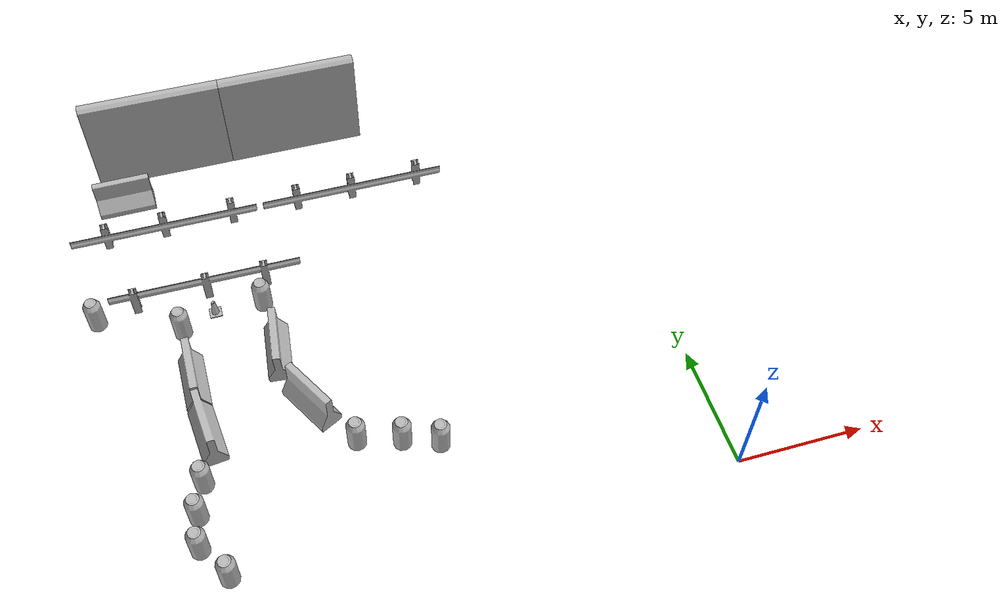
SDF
<sdf version="1.7">
 <world name="default">
  <model name="aws_robomaker_racetrack_CrashworthBucket_01_03">
   <frame name="aws_CrashworthBucket_01::__model__" attached_to="aws_CrashworthBucket_01::body">
    <pose relative_to="__model__">0 0 0 0 -0 0</pose>
   </frame>
   <link name="aws_CrashworthBucket_01::body">
    <pose relative_to="aws_CrashworthBucket_01::__model__">0 0 0 0 -0 0</pose>
    <inertial>
     <mass>5</mass>
     <inertia><ixx>1</ixx><ixy>0</ixy><ixz>0</ixz><iyy>1</iyy><iyz>0</iyz><izz>1</izz></inertia>
    </inertial>
    <visual name="visual">
     <geometry>
      <mesh>
       <uri>file://models/aws_robomaker_racetrack_CrashworthBucket_01/meshes/aws_CrashworthBucket_01_visual.DAE</uri>
      </mesh>
     </geometry>
     <material><shader type="pixel"><normal_map>__default__</normal_map></shader></material>
     <meta><layer>0</layer></meta>
    </visual>
    <collision name="collision_0">
     <geometry>
      <mesh>
       <uri>file://models/aws_robomaker_racetrack_CrashworthBucket_01/meshes/aws_CrashworthBucket_01_collision.DAE</uri>
       <scale>1 1 1</scale>
      </mesh>
     </geometry>
     <surface>
      <friction>
       <ode><mu>1</mu><mu2>1</mu2><fdir1>0 0 0</fdir1><slip1>0</slip1><slip2>0</slip2></ode>
       <torsional>
        <coefficient>1</coefficient>
        <patch_radius>0</patch_radius>
        <surface_radius>0</surface_radius>
        <use_patch_radius>1</use_patch_radius>
        <ode><slip>0</slip></ode>
       </torsional>
      </friction>
      <bounce><restitution_coefficient>0</restitution_coefficient><threshold>1e+06</threshold></bounce>
      <contact>
       <collide_without_contact>0</collide_without_contact>
       <collide_without_contact_bitmask>1</collide_without_contact_bitmask>
       <collide_bitmask>1</collide_bitmask>
       <ode>
        <soft_cfm>0</soft_cfm>
        <soft_erp>0.2</soft_erp>
        <kp>1e+13</kp>
        <kd>1</kd>
        <max_vel>0.01</max_vel>
        <min_depth>0</min_depth>
       </ode>
       <bullet>
        <split_impulse>1</split_impulse>
        <split_impulse_penetration_threshold>-0.01</split_impulse_penetration_threshold>
        <soft_cfm>0</soft_cfm>
        <soft_erp>0.2</soft_erp>
        <kp>1e+13</kp>
        <kd>1</kd>
       </bullet>
      </contact>
     </surface>
    </collision>
   </link>
   <static>1</static>
   <pose>-10.4129 3.68606 0.054 0 -0 0</pose>
  </model>
  <model name="aws_robomaker_racetrack_CrashworthBucket_01_08">
   <frame name="aws_CrashworthBucket_01::__model__" attached_to="aws_CrashworthBucket_01::body">
    <pose relative_to="__model__">0 0 0 0 -0 0</pose>
   </frame>
   <link name="aws_CrashworthBucket_01::body">
    <pose relative_to="aws_CrashworthBucket_01::__model__">0 0 0 0 -0 0</pose>
    <inertial>
     <mass>5</mass>
     <inertia><ixx>1</ixx><ixy>0</ixy><ixz>0</ixz><iyy>1</iyy><iyz>0</iyz><izz>1</izz></inertia>
    </inertial>
    <visual name="visual">
     <geometry>
      <mesh>
       <uri>file://models/aws_robomaker_racetrack_CrashworthBucket_01/meshes/aws_CrashworthBucket_01_visual.DAE</uri>
      </mesh>
     </geometry>
     <material><shader type="pixel"><normal_map>__default__</normal_map></shader></material>
     <meta><layer>0</layer></meta>
    </visual>
    <collision name="collision_0">
     <geometry>
      <mesh>
       <uri>file://models/aws_robomaker_racetrack_CrashworthBucket_01/meshes/aws_CrashworthBucket_01_collision.DAE</uri>
       <scale>1 1 1</scale>
      </mesh>
     </geometry>
     <surface>
      <friction>
       <ode><mu>1</mu><mu2>1</mu2><fdir1>0 0 0</fdir1><slip1>0</slip1><slip2>0</slip2></ode>
       <torsional>
        <coefficient>1</coefficient>
        <patch_radius>0</patch_radius>
        <surface_radius>0</surface_radius>
        <use_patch_radius>1</use_patch_radius>
        <ode><slip>0</slip></ode>
       </torsional>
      </friction>
      <bounce><restitution_coefficient>0</restitution_coefficient><threshold>1e+06</threshold></bounce>
      <contact>
       <collide_without_contact>0</collide_without_contact>
       <collide_without_contact_bitmask>1</collide_without_contact_bitmask>
       <collide_bitmask>1</collide_bitmask>
       <ode>
        <soft_cfm>0</soft_cfm>
        <soft_erp>0.2</soft_erp>
        <kp>1e+13</kp>
        <kd>1</kd>
        <max_vel>0.01</max_vel>
        <min_depth>0</min_depth>
       </ode>
       <bullet>
        <split_impulse>1</split_impulse>
        <split_impulse_penetration_threshold>-0.01</split_impulse_penetration_threshold>
        <soft_cfm>0</soft_cfm>
        <soft_erp>0.2</soft_erp>
        <kp>1e+13</kp>
        <kd>1</kd>
       </bullet>
      </contact>
     </surface>
    </collision>
   </link>
   <static>1</static>
   <pose>-19.5181 3.15886 0.050064 0 -0 0</pose>
  </model>
  <model name="aws_robomaker_racetrack_CrashworthBucket_01_09">
   <frame name="aws_CrashworthBucket_01::__model__" attached_to="aws_CrashworthBucket_01::body">
    <pose relative_to="__model__">0 0 0 0 -0 0</pose>
   </frame>
   <link name="aws_CrashworthBucket_01::body">
    <pose relative_to="aws_CrashworthBucket_01::__model__">0 0 0 0 -0 0</pose>
    <inertial>
     <mass>5</mass>
     <inertia><ixx>1</ixx><ixy>0</ixy><ixz>0</ixz><iyy>1</iyy><iyz>0</iyz><izz>1</izz></inertia>
    </inertial>
    <visual name="visual">
     <geometry>
      <mesh>
       <uri>file://models/aws_robomaker_racetrack_CrashworthBucket_01/meshes/aws_CrashworthBucket_01_visual.DAE</uri>
      </mesh>
     </geometry>
     <material><shader type="pixel"><normal_map>__default__</normal_map></shader></material>
     <meta><layer>0</layer></meta>
    </visual>
    <collision name="collision_0">
     <geometry>
      <mesh>
       <uri>file://models/aws_robomaker_racetrack_CrashworthBucket_01/meshes/aws_CrashworthBucket_01_collision.DAE</uri>
       <scale>1 1 1</scale>
      </mesh>
     </geometry>
     <surface>
      <friction>
       <ode><mu>1</mu><mu2>1</mu2><fdir1>0 0 0</fdir1><slip1>0</slip1><slip2>0</slip2></ode>
       <torsional>
        <coefficient>1</coefficient>
        <patch_radius>0</patch_radius>
        <surface_radius>0</surface_radius>
        <use_patch_radius>1</use_patch_radius>
        <ode><slip>0</slip></ode>
       </torsional>
      </friction>
      <bounce><restitution_coefficient>0</restitution_coefficient><threshold>1e+06</threshold></bounce>
      <contact>
       <collide_without_contact>0</collide_without_contact>
       <collide_without_contact_bitmask>1</collide_without_contact_bitmask>
       <collide_bitmask>1</collide_bitmask>
       <ode>
        <soft_cfm>0</soft_cfm>
        <soft_erp>0.2</soft_erp>
        <kp>1e+13</kp>
        <kd>1</kd>
        <max_vel>0.01</max_vel>
        <min_depth>0</min_depth>
       </ode>
       <bullet>
        <split_impulse>1</split_impulse>
        <split_impulse_penetration_threshold>-0.01</split_impulse_penetration_threshold>
        <soft_cfm>0</soft_cfm>
        <soft_erp>0.2</soft_erp>
        <kp>1e+13</kp>
        <kd>1</kd>
       </bullet>
      </contact>
     </surface>
    </collision>
   </link>
   <static>1</static>
   <pose>-19.6496 1.88456 0.054 0 -0 0</pose>
  </model>
  <model name="aws_robomaker_racetrack_CrashworthBucket_01_14">
   <frame name="aws_CrashworthBucket_01::__model__" attached_to="aws_CrashworthBucket_01::body">
    <pose relative_to="__model__">0 0 0 0 -0 0</pose>
   </frame>
   <link name="aws_CrashworthBucket_01::body">
    <pose relative_to="aws_CrashworthBucket_01::__model__">0 0 0 0 -0 0</pose>
    <inertial>
     <mass>5</mass>
     <inertia><ixx>1</ixx><ixy>0</ixy><ixz>0</ixz><iyy>1</iyy><iyz>0</iyz><izz>1</izz></inertia>
    </inertial>
    <visual name="visual">
     <geometry>
      <mesh>
       <uri>file://models/aws_robomaker_racetrack_CrashworthBucket_01/meshes/aws_CrashworthBucket_01_visual.DAE</uri>
      </mesh>
     </geometry>
     <material><shader type="pixel"><normal_map>__default__</normal_map></shader></material>
     <meta><layer>0</layer></meta>
    </visual>
    <collision name="collision_0">
     <geometry>
      <mesh>
       <uri>file://models/aws_robomaker_racetrack_CrashworthBucket_01/meshes/aws_CrashworthBucket_01_collision.DAE</uri>
       <scale>1 1 1</scale>
      </mesh>
     </geometry>
     <surface>
      <friction>
       <ode><mu>1</mu><mu2>1</mu2><fdir1>0 0 0</fdir1><slip1>0</slip1><slip2>0</slip2></ode>
       <torsional>
        <coefficient>1</coefficient>
        <patch_radius>0</patch_radius>
        <surface_radius>0</surface_radius>
        <use_patch_radius>1</use_patch_radius>
        <ode><slip>0</slip></ode>
       </torsional>
      </friction>
      <bounce><restitution_coefficient>0</restitution_coefficient><threshold>1e+06</threshold></bounce>
      <contact>
       <collide_without_contact>0</collide_without_contact>
       <collide_without_contact_bitmask>1</collide_without_contact_bitmask>
       <collide_bitmask>1</collide_bitmask>
       <ode>
        <soft_cfm>0</soft_cfm>
        <soft_erp>0.2</soft_erp>
        <kp>1e+13</kp>
        <kd>1</kd>
        <max_vel>0.01</max_vel>
        <min_depth>0</min_depth>
       </ode>
       <bullet>
        <split_impulse>1</split_impulse>
        <split_impulse_penetration_threshold>-0.01</split_impulse_penetration_threshold>
        <soft_cfm>0</soft_cfm>
        <soft_erp>0.2</soft_erp>
        <kp>1e+13</kp>
        <kd>1</kd>
       </bullet>
      </contact>
     </surface>
    </collision>
   </link>
   <static>1</static>
   <pose>-19.1324 4.40627 0.054 0 -0 0</pose>
  </model>
  <model name="aws_robomaker_racetrack_CrashworthBucket_01_20">
   <frame name="aws_CrashworthBucket_01::__model__" attached_to="aws_CrashworthBucket_01::body">
    <pose relative_to="__model__">0 0 0 0 -0 0</pose>
   </frame>
   <link name="aws_CrashworthBucket_01::body">
    <pose relative_to="aws_CrashworthBucket_01::__model__">0 0 0 0 -0 0</pose>
    <inertial>
     <mass>5</mass>
     <inertia><ixx>1</ixx><ixy>0</ixy><ixz>0</ixz><iyy>1</iyy><iyz>0</iyz><izz>1</izz></inertia>
    </inertial>
    <visual name="visual">
     <geometry>
      <mesh>
       <uri>file://models/aws_robomaker_racetrack_CrashworthBucket_01/meshes/aws_CrashworthBucket_01_visual.DAE</uri>
      </mesh>
     </geometry>
     <material><shader type="pixel"><normal_map>__default__</normal_map></shader></material>
     <meta><layer>0</layer></meta>
    </visual>
    <collision name="collision_0">
     <geometry>
      <mesh>
       <uri>file://models/aws_robomaker_racetrack_CrashworthBucket_01/meshes/aws_CrashworthBucket_01_collision.DAE</uri>
       <scale>1 1 1</scale>
      </mesh>
     </geometry>
     <surface>
      <friction>
       <ode><mu>1</mu><mu2>1</mu2><fdir1>0 0 0</fdir1><slip1>0</slip1><slip2>0</slip2></ode>
       <torsional>
        <coefficient>1</coefficient>
        <patch_radius>0</patch_radius>
        <surface_radius>0</surface_radius>
        <use_patch_radius>1</use_patch_radius>
        <ode><slip>0</slip></ode>
       </torsional>
      </friction>
      <bounce><restitution_coefficient>0</restitution_coefficient><threshold>1e+06</threshold></bounce>
      <contact>
       <collide_without_contact>0</collide_without_contact>
       <collide_without_contact_bitmask>1</collide_without_contact_bitmask>
       <collide_bitmask>1</collide_bitmask>
       <ode>
        <soft_cfm>0</soft_cfm>
        <soft_erp>0.2</soft_erp>
        <kp>1e+13</kp>
        <kd>1</kd>
        <max_vel>0.01</max_vel>
        <min_depth>0</min_depth>
       </ode>
       <bullet>
        <split_impulse>1</split_impulse>
        <split_impulse_penetration_threshold>-0.01</split_impulse_penetration_threshold>
        <soft_cfm>0</soft_cfm>
        <soft_erp>0.2</soft_erp>
        <kp>1e+13</kp>
        <kd>1</kd>
       </bullet>
      </contact>
     </surface>
    </collision>
   </link>
   <static>1</static>
   <pose>-22.169 12.8311 0 0 -0 0</pose>
  </model>
  <model name="aws_robomaker_racetrack_CrashworthBucket_01_28">
   <frame name="aws_CrashworthBucket_01::__model__" attached_to="aws_CrashworthBucket_01::body">
    <pose relative_to="__model__">0 0 0 0 -0 0</pose>
   </frame>
   <link name="aws_CrashworthBucket_01::body">
    <pose relative_to="aws_CrashworthBucket_01::__model__">0 0 0 0 -0 0</pose>
    <inertial>
     <mass>5</mass>
     <inertia><ixx>1</ixx><ixy>0</ixy><ixz>0</ixz><iyy>1</iyy><iyz>0</iyz><izz>1</izz></inertia>
    </inertial>
    <visual name="visual">
     <geometry>
      <mesh>
       <uri>file://models/aws_robomaker_racetrack_CrashworthBucket_01/meshes/aws_CrashworthBucket_01_visual.DAE</uri>
      </mesh>
     </geometry>
     <material><shader type="pixel"><normal_map>__default__</normal_map></shader></material>
     <meta><layer>0</layer></meta>
    </visual>
    <collision name="collision_0">
     <geometry>
      <mesh>
       <uri>file://models/aws_robomaker_racetrack_CrashworthBucket_01/meshes/aws_CrashworthBucket_01_collision.DAE</uri>
       <scale>1 1 1</scale>
      </mesh>
     </geometry>
     <surface>
      <friction>
       <ode><mu>1</mu><mu2>1</mu2><fdir1>0 0 0</fdir1><slip1>0</slip1><slip2>0</slip2></ode>
       <torsional>
        <coefficient>1</coefficient>
        <patch_radius>0</patch_radius>
        <surface_radius>0</surface_radius>
        <use_patch_radius>1</use_patch_radius>
        <ode><slip>0</slip></ode>
       </torsional>
      </friction>
      <bounce><restitution_coefficient>0</restitution_coefficient><threshold>1e+06</threshold></bounce>
      <contact>
       <collide_without_contact>0</collide_without_contact>
       <collide_without_contact_bitmask>1</collide_without_contact_bitmask>
       <collide_bitmask>1</collide_bitmask>
       <ode>
        <soft_cfm>0</soft_cfm>
        <soft_erp>0.2</soft_erp>
        <kp>1e+13</kp>
        <kd>1</kd>
        <max_vel>0.01</max_vel>
        <min_depth>0</min_depth>
       </ode>
       <bullet>
        <split_impulse>1</split_impulse>
        <split_impulse_penetration_threshold>-0.01</split_impulse_penetration_threshold>
        <soft_cfm>0</soft_cfm>
        <soft_erp>0.2</soft_erp>
        <kp>1e+13</kp>
        <kd>1</kd>
       </bullet>
      </contact>
     </surface>
    </collision>
   </link>
   <static>1</static>
   <pose>-15.5919 11.9729 0.049187 0 -0 0</pose>
  </model>
  <model name="aws_robomaker_racetrack_CrashworthBucket_01_44">
   <frame name="aws_CrashworthBucket_01::__model__" attached_to="aws_CrashworthBucket_01::body">
    <pose relative_to="__model__">0 0 0 0 -0 0</pose>
   </frame>
   <link name="aws_CrashworthBucket_01::body">
    <pose relative_to="aws_CrashworthBucket_01::__model__">0 0 0 0 -0 0</pose>
    <inertial>
     <mass>5</mass>
     <inertia><ixx>1</ixx><ixy>0</ixy><ixz>0</ixz><iyy>1</iyy><iyz>0</iyz><izz>1</izz></inertia>
    </inertial>
    <visual name="visual">
     <geometry>
      <mesh>
       <uri>file://models/aws_robomaker_racetrack_CrashworthBucket_01/meshes/aws_CrashworthBucket_01_visual.DAE</uri>
      </mesh>
     </geometry>
     <material><shader type="pixel"><normal_map>__default__</normal_map></shader></material>
     <meta><layer>0</layer></meta>
    </visual>
    <collision name="collision_0">
     <geometry>
      <mesh>
       <uri>file://models/aws_robomaker_racetrack_CrashworthBucket_01/meshes/aws_CrashworthBucket_01_collision.DAE</uri>
       <scale>1 1 1</scale>
      </mesh>
     </geometry>
     <surface>
      <friction>
       <ode><mu>1</mu><mu2>1</mu2><fdir1>0 0 0</fdir1><slip1>0</slip1><slip2>0</slip2></ode>
       <torsional>
        <coefficient>1</coefficient>
        <patch_radius>0</patch_radius>
        <surface_radius>0</surface_radius>
        <use_patch_radius>1</use_patch_radius>
        <ode><slip>0</slip></ode>
       </torsional>
      </friction>
      <bounce><restitution_coefficient>0</restitution_coefficient><threshold>1e+06</threshold></bounce>
      <contact>
       <collide_without_contact>0</collide_without_contact>
       <collide_without_contact_bitmask>1</collide_without_contact_bitmask>
       <collide_bitmask>1</collide_bitmask>
       <ode>
        <soft_cfm>0</soft_cfm>
        <soft_erp>0.2</soft_erp>
        <kp>1e+13</kp>
        <kd>1</kd>
        <max_vel>0.01</max_vel>
        <min_depth>0</min_depth>
       </ode>
       <bullet>
        <split_impulse>1</split_impulse>
        <split_impulse_penetration_threshold>-0.01</split_impulse_penetration_threshold>
        <soft_cfm>0</soft_cfm>
        <soft_erp>0.2</soft_erp>
        <kp>1e+13</kp>
        <kd>1</kd>
       </bullet>
      </contact>
     </surface>
    </collision>
   </link>
   <static>1</static>
   <pose>-11.7567 4.17668 0.054 0 -0 0</pose>
  </model>
  <model name="aws_robomaker_racetrack_CrashworthBucket_01_61">
   <frame name="aws_CrashworthBucket_01::__model__" attached_to="aws_CrashworthBucket_01::body">
    <pose relative_to="__model__">0 0 0 0 -0 0</pose>
   </frame>
   <link name="aws_CrashworthBucket_01::body">
    <pose relative_to="aws_CrashworthBucket_01::__model__">0 0 0 0 -0 0</pose>
    <inertial>
     <mass>5</mass>
     <inertia><ixx>1</ixx><ixy>0</ixy><ixz>0</ixz><iyy>1</iyy><iyz>0</iyz><izz>1</izz></inertia>
    </inertial>
    <visual name="visual">
     <geometry>
      <mesh>
       <uri>file://models/aws_robomaker_racetrack_CrashworthBucket_01/meshes/aws_CrashworthBucket_01_visual.DAE</uri>
      </mesh>
     </geometry>
     <material><shader type="pixel"><normal_map>__default__</normal_map></shader></material>
     <meta><layer>0</layer></meta>
    </visual>
    <collision name="collision_0">
     <geometry>
      <mesh>
       <uri>file://models/aws_robomaker_racetrack_CrashworthBucket_01/meshes/aws_CrashworthBucket_01_collision.DAE</uri>
       <scale>1 1 1</scale>
      </mesh>
     </geometry>
     <surface>
      <friction>
       <ode><mu>1</mu><mu2>1</mu2><fdir1>0 0 0</fdir1><slip1>0</slip1><slip2>0</slip2></ode>
       <torsional>
        <coefficient>1</coefficient>
        <patch_radius>0</patch_radius>
        <surface_radius>0</surface_radius>
        <use_patch_radius>1</use_patch_radius>
        <ode><slip>0</slip></ode>
       </torsional>
      </friction>
      <bounce><restitution_coefficient>0</restitution_coefficient><threshold>1e+06</threshold></bounce>
      <contact>
       <collide_without_contact>0</collide_without_contact>
       <collide_without_contact_bitmask>1</collide_without_contact_bitmask>
       <collide_bitmask>1</collide_bitmask>
       <ode>
        <soft_cfm>0</soft_cfm>
        <soft_erp>0.2</soft_erp>
        <kp>1e+13</kp>
        <kd>1</kd>
        <max_vel>0.01</max_vel>
        <min_depth>0</min_depth>
       </ode>
       <bullet>
        <split_impulse>1</split_impulse>
        <split_impulse_penetration_threshold>-0.01</split_impulse_penetration_threshold>
        <soft_cfm>0</soft_cfm>
        <soft_erp>0.2</soft_erp>
        <kp>1e+13</kp>
        <kd>1</kd>
       </bullet>
      </contact>
     </surface>
    </collision>
   </link>
   <static>1</static>
   <pose>-13.3888 4.62922 0.054 0 -0 0</pose>
  </model>
  <model name="aws_robomaker_racetrack_CrashworthBucket_01_64">
   <frame name="aws_CrashworthBucket_01::__model__" attached_to="aws_CrashworthBucket_01::body">
    <pose relative_to="__model__">0 0 0 0 -0 0</pose>
   </frame>
   <link name="aws_CrashworthBucket_01::body">
    <pose relative_to="aws_CrashworthBucket_01::__model__">0 0 0 0 -0 0</pose>
    <inertial>
     <mass>5</mass>
     <inertia><ixx>1</ixx><ixy>0</ixy><ixz>0</ixz><iyy>1</iyy><iyz>0</iyz><izz>1</izz></inertia>
    </inertial>
    <visual name="visual">
     <geometry>
      <mesh>
       <uri>file://models/aws_robomaker_racetrack_CrashworthBucket_01/meshes/aws_CrashworthBucket_01_visual.DAE</uri>
      </mesh>
     </geometry>
     <material><shader type="pixel"><normal_map>__default__</normal_map></shader></material>
     <meta><layer>0</layer></meta>
    </visual>
    <collision name="collision_0">
     <geometry>
      <mesh>
       <uri>file://models/aws_robomaker_racetrack_CrashworthBucket_01/meshes/aws_CrashworthBucket_01_collision.DAE</uri>
       <scale>1 1 1</scale>
      </mesh>
     </geometry>
     <surface>
      <friction>
       <ode><mu>1</mu><mu2>1</mu2><fdir1>0 0 0</fdir1><slip1>0</slip1><slip2>0</slip2></ode>
       <torsional>
        <coefficient>1</coefficient>
        <patch_radius>0</patch_radius>
        <surface_radius>0</surface_radius>
        <use_patch_radius>1</use_patch_radius>
        <ode><slip>0</slip></ode>
       </torsional>
      </friction>
      <bounce><restitution_coefficient>0</restitution_coefficient><threshold>1e+06</threshold></bounce>
      <contact>
       <collide_without_contact>0</collide_without_contact>
       <collide_without_contact_bitmask>1</collide_without_contact_bitmask>
       <collide_bitmask>1</collide_bitmask>
       <ode>
        <soft_cfm>0</soft_cfm>
        <soft_erp>0.2</soft_erp>
        <kp>1e+13</kp>
        <kd>1</kd>
        <max_vel>0.01</max_vel>
        <min_depth>0</min_depth>
       </ode>
       <bullet>
        <split_impulse>1</split_impulse>
        <split_impulse_penetration_threshold>-0.01</split_impulse_penetration_threshold>
        <soft_cfm>0</soft_cfm>
        <soft_erp>0.2</soft_erp>
        <kp>1e+13</kp>
        <kd>1</kd>
       </bullet>
      </contact>
     </surface>
    </collision>
   </link>
   <static>1</static>
   <pose>-18.9263 11.4311 0.054 0 0 -0.127634</pose>
  </model>
  <model name="aws_robomaker_racetrack_CrashworthBucket_01_65">
   <frame name="aws_CrashworthBucket_01::__model__" attached_to="aws_CrashworthBucket_01::body">
    <pose relative_to="__model__">0 0 0 0 -0 0</pose>
   </frame>
   <link name="aws_CrashworthBucket_01::body">
    <pose relative_to="aws_CrashworthBucket_01::__model__">0 0 0 0 -0 0</pose>
    <inertial>
     <mass>5</mass>
     <inertia><ixx>1</ixx><ixy>0</ixy><ixz>0</ixz><iyy>1</iyy><iyz>0</iyz><izz>1</izz></inertia>
    </inertial>
    <visual name="visual">
     <geometry>
      <mesh>
       <uri>file://models/aws_robomaker_racetrack_CrashworthBucket_01/meshes/aws_CrashworthBucket_01_visual.DAE</uri>
      </mesh>
     </geometry>
     <material><shader type="pixel"><normal_map>__default__</normal_map></shader></material>
     <meta><layer>0</layer></meta>
    </visual>
    <collision name="collision_0">
     <geometry>
      <mesh>
       <uri>file://models/aws_robomaker_racetrack_CrashworthBucket_01/meshes/aws_CrashworthBucket_01_collision.DAE</uri>
       <scale>1 1 1</scale>
      </mesh>
     </geometry>
     <surface>
      <friction>
       <ode><mu>1</mu><mu2>1</mu2><fdir1>0 0 0</fdir1><slip1>0</slip1><slip2>0</slip2></ode>
       <torsional>
        <coefficient>1</coefficient>
        <patch_radius>0</patch_radius>
        <surface_radius>0</surface_radius>
        <use_patch_radius>1</use_patch_radius>
        <ode><slip>0</slip></ode>
       </torsional>
      </friction>
      <bounce><restitution_coefficient>0</restitution_coefficient><threshold>1e+06</threshold></bounce>
      <contact>
       <collide_without_contact>0</collide_without_contact>
       <collide_without_contact_bitmask>1</collide_without_contact_bitmask>
       <collide_bitmask>1</collide_bitmask>
       <ode>
        <soft_cfm>0</soft_cfm>
        <soft_erp>0.2</soft_erp>
        <kp>1e+13</kp>
        <kd>1</kd>
        <max_vel>0.01</max_vel>
        <min_depth>0</min_depth>
       </ode>
       <bullet>
        <split_impulse>1</split_impulse>
        <split_impulse_penetration_threshold>-0.01</split_impulse_penetration_threshold>
        <soft_cfm>0</soft_cfm>
        <soft_erp>0.2</soft_erp>
        <kp>1e+13</kp>
        <kd>1</kd>
       </bullet>
      </contact>
     </surface>
    </collision>
   </link>
   <static>1</static>
   <pose>-18.8208 0.559055 0.054 0 -0 0</pose>
  </model>
  <model name="aws_robomaker_racetrack_Fence_01_03">
   <frame name="aws_Fence_01::__model__" attached_to="aws_Fence_01::body">
    <pose relative_to="__model__">0 0 0 0 -0 0</pose>
   </frame>
   <link name="aws_Fence_01::body">
    <pose relative_to="aws_Fence_01::__model__">0 0 0 0 -0 0</pose>
    <inertial>
     <mass>5</mass>
     <inertia><ixx>1</ixx><ixy>0</ixy><ixz>0</ixz><iyy>1</iyy><iyz>0</iyz><izz>1</izz></inertia>
    </inertial>
    <visual name="visual">
     <geometry>
      <mesh><uri>file://models/aws_robomaker_racetrack_Fence_01/meshes/aws_Fence_01_visual.DAE</uri></mesh>
     </geometry>
     <material><shader type="pixel"><normal_map>__default__</normal_map></shader></material>
     <meta><layer>0</layer></meta>
    </visual>
    <collision name="collision_0">
     <geometry>
      <mesh>
       <uri>file://models/aws_robomaker_racetrack_Fence_01/meshes/aws_Fence_01_collision.DAE</uri>
       <scale>1 1 1</scale>
      </mesh>
     </geometry>
     <surface>
      <friction>
       <ode><mu>1</mu><mu2>1</mu2><fdir1>0 0 0</fdir1><slip1>0</slip1><slip2>0</slip2></ode>
       <torsional>
        <coefficient>1</coefficient>
        <patch_radius>0</patch_radius>
        <surface_radius>0</surface_radius>
        <use_patch_radius>1</use_patch_radius>
        <ode><slip>0</slip></ode>
       </torsional>
      </friction>
      <bounce><restitution_coefficient>0</restitution_coefficient><threshold>1e+06</threshold></bounce>
      <contact>
       <collide_without_contact>0</collide_without_contact>
       <collide_without_contact_bitmask>1</collide_without_contact_bitmask>
       <collide_bitmask>1</collide_bitmask>
       <ode>
        <soft_cfm>0</soft_cfm>
        <soft_erp>0.2</soft_erp>
        <kp>1e+13</kp>
        <kd>1</kd>
        <max_vel>0.01</max_vel>
        <min_depth>0</min_depth>
       </ode>
       <bullet>
        <split_impulse>1</split_impulse>
        <split_impulse_penetration_threshold>-0.01</split_impulse_penetration_threshold>
        <soft_cfm>0</soft_cfm>
        <soft_erp>0.2</soft_erp>
        <kp>1e+13</kp>
        <kd>1</kd>
       </bullet>
      </contact>
     </surface>
    </collision>
   </link>
   <static>1</static>
   <pose>-17.6812 13.1587 0 0 0 -1.57272</pose>
  </model>
  <model name="aws_robomaker_racetrack_Fence_01_12">
   <frame name="aws_Fence_01::__model__" attached_to="aws_Fence_01::body">
    <pose relative_to="__model__">0 0 0 0 -0 0</pose>
   </frame>
   <link name="aws_Fence_01::body">
    <pose relative_to="aws_Fence_01::__model__">0 0 0 0 -0 0</pose>
    <inertial>
     <mass>5</mass>
     <inertia><ixx>1</ixx><ixy>0</ixy><ixz>0</ixz><iyy>1</iyy><iyz>0</iyz><izz>1</izz></inertia>
    </inertial>
    <visual name="visual">
     <geometry>
      <mesh><uri>file://models/aws_robomaker_racetrack_Fence_01/meshes/aws_Fence_01_visual.DAE</uri></mesh>
     </geometry>
     <material><shader type="pixel"><normal_map>__default__</normal_map></shader></material>
     <meta><layer>0</layer></meta>
    </visual>
    <collision name="collision_0">
     <geometry>
      <mesh>
       <uri>file://models/aws_robomaker_racetrack_Fence_01/meshes/aws_Fence_01_collision.DAE</uri>
       <scale>1 1 1</scale>
      </mesh>
     </geometry>
     <surface>
      <friction>
       <ode><mu>1</mu><mu2>1</mu2><fdir1>0 0 0</fdir1><slip1>0</slip1><slip2>0</slip2></ode>
       <torsional>
        <coefficient>1</coefficient>
        <patch_radius>0</patch_radius>
        <surface_radius>0</surface_radius>
        <use_patch_radius>1</use_patch_radius>
        <ode><slip>0</slip></ode>
       </torsional>
      </friction>
      <bounce><restitution_coefficient>0</restitution_coefficient><threshold>1e+06</threshold></bounce>
      <contact>
       <collide_without_contact>0</collide_without_contact>
       <collide_without_contact_bitmask>1</collide_without_contact_bitmask>
       <collide_bitmask>1</collide_bitmask>
       <ode>
        <soft_cfm>0</soft_cfm>
        <soft_erp>0.2</soft_erp>
        <kp>1e+13</kp>
        <kd>1</kd>
        <max_vel>0.01</max_vel>
        <min_depth>0</min_depth>
       </ode>
       <bullet>
        <split_impulse>1</split_impulse>
        <split_impulse_penetration_threshold>-0.01</split_impulse_penetration_threshold>
        <soft_cfm>0</soft_cfm>
        <soft_erp>0.2</soft_erp>
        <kp>1e+13</kp>
        <kd>1</kd>
       </bullet>
      </contact>
     </surface>
    </collision>
   </link>
   <static>1</static>
   <pose>-18.8827 16.8189 0.054 0 -0 1.57158</pose>
  </model>
  <model name="aws_robomaker_racetrack_Fence_01_13">
   <frame name="aws_Fence_01::__model__" attached_to="aws_Fence_01::body">
    <pose relative_to="__model__">0 0 0 0 -0 0</pose>
   </frame>
   <link name="aws_Fence_01::body">
    <pose relative_to="aws_Fence_01::__model__">0 0 0 0 -0 0</pose>
    <inertial>
     <mass>5</mass>
     <inertia><ixx>1</ixx><ixy>0</ixy><ixz>0</ixz><iyy>1</iyy><iyz>0</iyz><izz>1</izz></inertia>
    </inertial>
    <visual name="visual">
     <geometry>
      <mesh><uri>file://models/aws_robomaker_racetrack_Fence_01/meshes/aws_Fence_01_visual.DAE</uri></mesh>
     </geometry>
     <material><shader type="pixel"><normal_map>__default__</normal_map></shader></material>
     <meta><layer>0</layer></meta>
    </visual>
    <collision name="collision_0">
     <geometry>
      <mesh>
       <uri>file://models/aws_robomaker_racetrack_Fence_01/meshes/aws_Fence_01_collision.DAE</uri>
       <scale>1 1 1</scale>
      </mesh>
     </geometry>
     <surface>
      <friction>
       <ode><mu>1</mu><mu2>1</mu2><fdir1>0 0 0</fdir1><slip1>0</slip1><slip2>0</slip2></ode>
       <torsional>
        <coefficient>1</coefficient>
        <patch_radius>0</patch_radius>
        <surface_radius>0</surface_radius>
        <use_patch_radius>1</use_patch_radius>
        <ode><slip>0</slip></ode>
       </torsional>
      </friction>
      <bounce><restitution_coefficient>0</restitution_coefficient><threshold>1e+06</threshold></bounce>
      <contact>
       <collide_without_contact>0</collide_without_contact>
       <collide_without_contact_bitmask>1</collide_without_contact_bitmask>
       <collide_bitmask>1</collide_bitmask>
       <ode>
        <soft_cfm>0</soft_cfm>
        <soft_erp>0.2</soft_erp>
        <kp>1e+13</kp>
        <kd>1</kd>
        <max_vel>0.01</max_vel>
        <min_depth>0</min_depth>
       </ode>
       <bullet>
        <split_impulse>1</split_impulse>
        <split_impulse_penetration_threshold>-0.01</split_impulse_penetration_threshold>
        <soft_cfm>0</soft_cfm>
        <soft_erp>0.2</soft_erp>
        <kp>1e+13</kp>
        <kd>1</kd>
       </bullet>
      </contact>
     </surface>
    </collision>
   </link>
   <static>1</static>
   <pose>-10.7761 16.8189 0.054 0 -0 1.57158</pose>
  </model>
  <model name="aws_robomaker_racetrack_StonePier_01_02">
   <frame name="aws_StonePier_01::__model__" attached_to="aws_StonePier_01::body">
    <pose relative_to="__model__">0 0 0 0 -0 0</pose>
   </frame>
   <link name="aws_StonePier_01::body">
    <pose relative_to="aws_StonePier_01::__model__">0 0 0 0 -0 0</pose>
    <inertial>
     <mass>10</mass>
     <inertia><ixx>0</ixx><ixy>0</ixy><ixz>0</ixz><iyy>0</iyy><iyz>0</iyz><izz>0</izz></inertia>
    </inertial>
    <visual name="visual">
     <geometry>
      <mesh><uri>file://models/aws_robomaker_racetrack_StonePier_01/meshes/aws_StonePier_01_visual.DAE</uri></mesh>
     </geometry>
     <material><shader type="pixel"><normal_map>__default__</normal_map></shader></material>
     <meta><layer>0</layer></meta>
    </visual>
    <collision name="collision_0">
     <geometry>
      <mesh>
       <uri>file://models/aws_robomaker_racetrack_StonePier_01/meshes/aws_StonePier_01_collision.DAE</uri>
       <scale>1 1 1</scale>
      </mesh>
     </geometry>
     <surface>
      <friction>
       <ode><mu>1</mu><mu2>1</mu2><fdir1>0 0 0</fdir1><slip1>0</slip1><slip2>0</slip2></ode>
       <torsional>
        <coefficient>1</coefficient>
        <patch_radius>0</patch_radius>
        <surface_radius>0</surface_radius>
        <use_patch_radius>1</use_patch_radius>
        <ode><slip>0</slip></ode>
       </torsional>
      </friction>
      <bounce><restitution_coefficient>0</restitution_coefficient><threshold>1e+06</threshold></bounce>
      <contact>
       <collide_without_contact>0</collide_without_contact>
       <collide_without_contact_bitmask>1</collide_without_contact_bitmask>
       <collide_bitmask>1</collide_bitmask>
       <ode>
        <soft_cfm>0</soft_cfm>
        <soft_erp>0.2</soft_erp>
        <kp>1e+13</kp>
        <kd>1</kd>
        <max_vel>0.01</max_vel>
        <min_depth>0</min_depth>
       </ode>
       <bullet>
        <split_impulse>1</split_impulse>
        <split_impulse_penetration_threshold>-0.01</split_impulse_penetration_threshold>
        <soft_cfm>0</soft_cfm>
        <soft_erp>0.2</soft_erp>
        <kp>1e+13</kp>
        <kd>1</kd>
       </bullet>
      </contact>
     </surface>
    </collision>
   </link>
   <static>1</static>
   <pose>-18.6896 6.36732 0.054 0 0 -1.46033</pose>
  </model>
  <model name="aws_robomaker_racetrack_StonePier_01_04">
   <frame name="aws_StonePier_01::__model__" attached_to="aws_StonePier_01::body">
    <pose relative_to="__model__">0 0 0 0 -0 0</pose>
   </frame>
   <link name="aws_StonePier_01::body">
    <pose relative_to="aws_StonePier_01::__model__">0 0 0 0 -0 0</pose>
    <inertial>
     <mass>10</mass>
     <inertia><ixx>0</ixx><ixy>0</ixy><ixz>0</ixz><iyy>0</iyy><iyz>0</iyz><izz>0</izz></inertia>
    </inertial>
    <visual name="visual">
     <geometry>
      <mesh><uri>file://models/aws_robomaker_racetrack_StonePier_01/meshes/aws_StonePier_01_visual.DAE</uri></mesh>
     </geometry>
     <material><shader type="pixel"><normal_map>__default__</normal_map></shader></material>
     <meta><layer>0</layer></meta>
    </visual>
    <collision name="collision_0">
     <geometry>
      <mesh>
       <uri>file://models/aws_robomaker_racetrack_StonePier_01/meshes/aws_StonePier_01_collision.DAE</uri>
       <scale>1 1 1</scale>
      </mesh>
     </geometry>
     <surface>
      <friction>
       <ode><mu>1</mu><mu2>1</mu2><fdir1>0 0 0</fdir1><slip1>0</slip1><slip2>0</slip2></ode>
       <torsional>
        <coefficient>1</coefficient>
        <patch_radius>0</patch_radius>
        <surface_radius>0</surface_radius>
        <use_patch_radius>1</use_patch_radius>
        <ode><slip>0</slip></ode>
       </torsional>
      </friction>
      <bounce><restitution_coefficient>0</restitution_coefficient><threshold>1e+06</threshold></bounce>
      <contact>
       <collide_without_contact>0</collide_without_contact>
       <collide_without_contact_bitmask>1</collide_without_contact_bitmask>
       <collide_bitmask>1</collide_bitmask>
       <ode>
        <soft_cfm>0</soft_cfm>
        <soft_erp>0.2</soft_erp>
        <kp>1e+13</kp>
        <kd>1</kd>
        <max_vel>0.01</max_vel>
        <min_depth>0</min_depth>
       </ode>
       <bullet>
        <split_impulse>1</split_impulse>
        <split_impulse_penetration_threshold>-0.01</split_impulse_penetration_threshold>
        <soft_cfm>0</soft_cfm>
        <soft_erp>0.2</soft_erp>
        <kp>1e+13</kp>
        <kd>1</kd>
       </bullet>
      </contact>
     </surface>
    </collision>
   </link>
   <static>1</static>
   <pose>-20.3219 18.8912 0.054 0 -0 0.009742</pose>
  </model>
  <model name="aws_robomaker_racetrack_StonePier_01_49">
   <frame name="aws_StonePier_01::__model__" attached_to="aws_StonePier_01::body">
    <pose relative_to="__model__">0 0 0 0 -0 0</pose>
   </frame>
   <link name="aws_StonePier_01::body">
    <pose relative_to="aws_StonePier_01::__model__">0 0 0 0 -0 0</pose>
    <inertial>
     <mass>10</mass>
     <inertia><ixx>0</ixx><ixy>0</ixy><ixz>0</ixz><iyy>0</iyy><iyz>0</iyz><izz>0</izz></inertia>
    </inertial>
    <visual name="visual">
     <geometry>
      <mesh><uri>file://models/aws_robomaker_racetrack_StonePier_01/meshes/aws_StonePier_01_visual.DAE</uri></mesh>
     </geometry>
     <material><shader type="pixel"><normal_map>__default__</normal_map></shader></material>
     <meta><layer>0</layer></meta>
    </visual>
    <collision name="collision_0">
     <geometry>
      <mesh>
       <uri>file://models/aws_robomaker_racetrack_StonePier_01/meshes/aws_StonePier_01_collision.DAE</uri>
       <scale>1 1 1</scale>
      </mesh>
     </geometry>
     <surface>
      <friction>
       <ode><mu>1</mu><mu2>1</mu2><fdir1>0 0 0</fdir1><slip1>0</slip1><slip2>0</slip2></ode>
       <torsional>
        <coefficient>1</coefficient>
        <patch_radius>0</patch_radius>
        <surface_radius>0</surface_radius>
        <use_patch_radius>1</use_patch_radius>
        <ode><slip>0</slip></ode>
       </torsional>
      </friction>
      <bounce><restitution_coefficient>0</restitution_coefficient><threshold>1e+06</threshold></bounce>
      <contact>
       <collide_without_contact>0</collide_without_contact>
       <collide_without_contact_bitmask>1</collide_without_contact_bitmask>
       <collide_bitmask>1</collide_bitmask>
       <ode>
        <soft_cfm>0</soft_cfm>
        <soft_erp>0.2</soft_erp>
        <kp>1e+13</kp>
        <kd>1</kd>
        <max_vel>0.01</max_vel>
        <min_depth>0</min_depth>
       </ode>
       <bullet>
        <split_impulse>1</split_impulse>
        <split_impulse_penetration_threshold>-0.01</split_impulse_penetration_threshold>
        <soft_cfm>0</soft_cfm>
        <soft_erp>0.2</soft_erp>
        <kp>1e+13</kp>
        <kd>1</kd>
       </bullet>
      </contact>
     </surface>
    </collision>
   </link>
   <static>1</static>
   <pose>-14.694 6.62247 0.124513 -1.6e-05 -1.2e-05 -1.07465</pose>
  </model>
  <model name="aws_robomaker_racetrack_StonePier_01_50">
   <frame name="aws_StonePier_01::__model__" attached_to="aws_StonePier_01::body">
    <pose relative_to="__model__">0 0 0 0 -0 0</pose>
   </frame>
   <link name="aws_StonePier_01::body">
    <pose relative_to="aws_StonePier_01::__model__">0 0 0 0 -0 0</pose>
    <inertial>
     <mass>10</mass>
     <inertia><ixx>0</ixx><ixy>0</ixy><ixz>0</ixz><iyy>0</iyy><iyz>0</iyz><izz>0</izz></inertia>
    </inertial>
    <visual name="visual">
     <geometry>
      <mesh><uri>file://models/aws_robomaker_racetrack_StonePier_01/meshes/aws_StonePier_01_visual.DAE</uri></mesh>
     </geometry>
     <material><shader type="pixel"><normal_map>__default__</normal_map></shader></material>
     <meta><layer>0</layer></meta>
    </visual>
    <collision name="collision_0">
     <geometry>
      <mesh>
       <uri>file://models/aws_robomaker_racetrack_StonePier_01/meshes/aws_StonePier_01_collision.DAE</uri>
       <scale>1 1 1</scale>
      </mesh>
     </geometry>
     <surface>
      <friction>
       <ode><mu>1</mu><mu2>1</mu2><fdir1>0 0 0</fdir1><slip1>0</slip1><slip2>0</slip2></ode>
       <torsional>
        <coefficient>1</coefficient>
        <patch_radius>0</patch_radius>
        <surface_radius>0</surface_radius>
        <use_patch_radius>1</use_patch_radius>
        <ode><slip>0</slip></ode>
       </torsional>
      </friction>
      <bounce><restitution_coefficient>0</restitution_coefficient><threshold>1e+06</threshold></bounce>
      <contact>
       <collide_without_contact>0</collide_without_contact>
       <collide_without_contact_bitmask>1</collide_without_contact_bitmask>
       <collide_bitmask>1</collide_bitmask>
       <ode>
        <soft_cfm>0</soft_cfm>
        <soft_erp>0.2</soft_erp>
        <kp>1e+13</kp>
        <kd>1</kd>
        <max_vel>0.01</max_vel>
        <min_depth>0</min_depth>
       </ode>
       <bullet>
        <split_impulse>1</split_impulse>
        <split_impulse_penetration_threshold>-0.01</split_impulse_penetration_threshold>
        <soft_cfm>0</soft_cfm>
        <soft_erp>0.2</soft_erp>
        <kp>1e+13</kp>
        <kd>1</kd>
       </bullet>
      </contact>
     </surface>
    </collision>
   </link>
   <static>1</static>
   <pose>-15.4511 9.41806 -3.6e-05 -0.031647 -0.067031 1.464</pose>
  </model>
  <model name="aws_robomaker_racetrack_StonePier_01_51">
   <frame name="aws_StonePier_01::__model__" attached_to="aws_StonePier_01::body">
    <pose relative_to="__model__">0 0 0 0 -0 0</pose>
   </frame>
   <link name="aws_StonePier_01::body">
    <pose relative_to="aws_StonePier_01::__model__">0 0 0 0 -0 0</pose>
    <inertial>
     <mass>10</mass>
     <inertia><ixx>0</ixx><ixy>0</ixy><ixz>0</ixz><iyy>0</iyy><iyz>0</iyz><izz>0</izz></inertia>
    </inertial>
    <visual name="visual">
     <geometry>
      <mesh><uri>file://models/aws_robomaker_racetrack_StonePier_01/meshes/aws_StonePier_01_visual.DAE</uri></mesh>
     </geometry>
     <material><shader type="pixel"><normal_map>__default__</normal_map></shader></material>
     <meta><layer>0</layer></meta>
    </visual>
    <collision name="collision_0">
     <geometry>
      <mesh>
       <uri>file://models/aws_robomaker_racetrack_StonePier_01/meshes/aws_StonePier_01_collision.DAE</uri>
       <scale>1 1 1</scale>
      </mesh>
     </geometry>
     <surface>
      <friction>
       <ode><mu>1</mu><mu2>1</mu2><fdir1>0 0 0</fdir1><slip1>0</slip1><slip2>0</slip2></ode>
       <torsional>
        <coefficient>1</coefficient>
        <patch_radius>0</patch_radius>
        <surface_radius>0</surface_radius>
        <use_patch_radius>1</use_patch_radius>
        <ode><slip>0</slip></ode>
       </torsional>
      </friction>
      <bounce><restitution_coefficient>0</restitution_coefficient><threshold>1e+06</threshold></bounce>
      <contact>
       <collide_without_contact>0</collide_without_contact>
       <collide_without_contact_bitmask>1</collide_without_contact_bitmask>
       <collide_bitmask>1</collide_bitmask>
       <ode>
        <soft_cfm>0</soft_cfm>
        <soft_erp>0.2</soft_erp>
        <kp>1e+13</kp>
        <kd>1</kd>
        <max_vel>0.01</max_vel>
        <min_depth>0</min_depth>
       </ode>
       <bullet>
        <split_impulse>1</split_impulse>
        <split_impulse_penetration_threshold>-0.01</split_impulse_penetration_threshold>
        <soft_cfm>0</soft_cfm>
        <soft_erp>0.2</soft_erp>
        <kp>1e+13</kp>
        <kd>1</kd>
       </bullet>
      </contact>
     </surface>
    </collision>
   </link>
   <static>1</static>
   <pose>-18.8268 8.80099 0.05663 0.000282 0.000224 -1.56157</pose>
  </model>
  <model name="aws_robomaker_racetrack_TrafficCone_01_01">
   <frame name="aws_TrafficCone_01::__model__" attached_to="aws_TrafficCone_01::body">
    <pose relative_to="__model__">0 0 0 0 -0 0</pose>
   </frame>
   <link name="aws_TrafficCone_01::body">
    <pose relative_to="aws_TrafficCone_01::__model__">0 0 0 0 -0 0</pose>
    <inertial>
     <mass>0.5</mass>
     <inertia><ixx>1</ixx><ixy>0</ixy><ixz>0</ixz><iyy>1</iyy><iyz>0</iyz><izz>1</izz></inertia>
    </inertial>
    <visual name="visual">
     <geometry>
      <mesh>
       <uri>file://models/aws_robomaker_racetrack_TrafficCone_01/meshes/aws_TrafficCone_01_visual.DAE</uri>
      </mesh>
     </geometry>
     <material><shader type="pixel"><normal_map>__default__</normal_map></shader></material>
     <meta><layer>0</layer></meta>
    </visual>
    <collision name="collision_0">
     <geometry>
      <mesh>
       <uri>file://models/aws_robomaker_racetrack_TrafficCone_01/meshes/aws_TrafficCone_01_coliision.DAE</uri>
       <scale>1 1 1</scale>
      </mesh>
     </geometry>
     <surface>
      <friction>
       <ode><mu>1</mu><mu2>1</mu2><fdir1>0 0 0</fdir1><slip1>0</slip1><slip2>0</slip2></ode>
       <torsional>
        <coefficient>1</coefficient>
        <patch_radius>0</patch_radius>
        <surface_radius>0</surface_radius>
        <use_patch_radius>1</use_patch_radius>
        <ode><slip>0</slip></ode>
       </torsional>
      </friction>
      <bounce><restitution_coefficient>0</restitution_coefficient><threshold>1e+06</threshold></bounce>
      <contact>
       <collide_without_contact>0</collide_without_contact>
       <collide_without_contact_bitmask>1</collide_without_contact_bitmask>
       <collide_bitmask>1</collide_bitmask>
       <ode>
        <soft_cfm>0</soft_cfm>
        <soft_erp>0.2</soft_erp>
        <kp>1e+13</kp>
        <kd>1</kd>
        <max_vel>0.01</max_vel>
        <min_depth>0</min_depth>
       </ode>
       <bullet>
        <split_impulse>1</split_impulse>
        <split_impulse_penetration_threshold>-0.01</split_impulse_penetration_threshold>
        <soft_cfm>0</soft_cfm>
        <soft_erp>0.2</soft_erp>
        <kp>1e+13</kp>
        <kd>1</kd>
       </bullet>
      </contact>
     </surface>
    </collision>
   </link>
   <static>1</static>
   <pose>-17.5489 12.1161 0.037859 0 -0 0</pose>
  </model>
  <model name="aws_robomaker_racetrack_Wall_01_04">
   <frame name="aws_Wall_01::__model__" attached_to="aws_Wall_01::body">
    <pose relative_to="__model__">0 0 0 0 -0 0</pose>
   </frame>
   <link name="aws_Wall_01::body">
    <pose relative_to="aws_Wall_01::__model__">0 0 0 0 -0 0</pose>
    <inertial>
     <mass>500</mass>
     <inertia><ixx>1</ixx><ixy>0</ixy><ixz>0</ixz><iyy>1</iyy><iyz>0</iyz><izz>1</izz></inertia>
    </inertial>
    <visual name="visual">
     <geometry>
      <mesh>
       <uri>file://models/aws_robomaker_racetrack_Wall_01/meshes/aws_Wall_01_visual.DAE</uri>
       <scale>2.59853 2.59853 2.59853</scale>
      </mesh>
     </geometry>
     <material><shader type="pixel"><normal_map>__default__</normal_map></shader></material>
     <meta><layer>1</layer></meta>
    </visual>
    <collision name="collision_0">
     <geometry>
      <mesh>
       <uri>file://models/aws_robomaker_racetrack_Wall_01/meshes/aws_Wall_01_collision.DAE</uri>
       <scale>2.59853 2.59853 2.59853</scale>
      </mesh>
     </geometry>
     <surface>
      <friction>
       <ode><mu>1</mu><mu2>1</mu2><fdir1>0 0 0</fdir1><slip1>0</slip1><slip2>0</slip2></ode>
       <torsional>
        <coefficient>1</coefficient>
        <patch_radius>0</patch_radius>
        <surface_radius>0</surface_radius>
        <use_patch_radius>1</use_patch_radius>
        <ode><slip>0</slip></ode>
       </torsional>
      </friction>
      <bounce><restitution_coefficient>0</restitution_coefficient><threshold>1e+06</threshold></bounce>
      <contact>
       <collide_without_contact>0</collide_without_contact>
       <collide_without_contact_bitmask>1</collide_without_contact_bitmask>
       <collide_bitmask>1</collide_bitmask>
       <ode>
        <soft_cfm>0</soft_cfm>
        <soft_erp>0.2</soft_erp>
        <kp>1e+13</kp>
        <kd>1</kd>
        <max_vel>0.01</max_vel>
        <min_depth>0</min_depth>
       </ode>
       <bullet>
        <split_impulse>1</split_impulse>
        <split_impulse_penetration_threshold>-0.01</split_impulse_penetration_threshold>
        <soft_cfm>0</soft_cfm>
        <soft_erp>0.2</soft_erp>
        <kp>1e+13</kp>
        <kd>1</kd>
       </bullet>
      </contact>
     </surface>
    </collision>
   </link>
   <static>1</static>
   <pose>-12.5489 20.683 0 0 -0 0</pose>
  </model>
  <model name="aws_robomaker_racetrack_Wall_01_05">
   <frame name="aws_Wall_01::__model__" attached_to="aws_Wall_01::body">
    <pose relative_to="__model__">0 0 0 0 -0 0</pose>
   </frame>
   <link name="aws_Wall_01::body">
    <pose relative_to="aws_Wall_01::__model__">0 0 0 0 -0 0</pose>
    <inertial>
     <mass>500</mass>
     <inertia><ixx>1</ixx><ixy>0</ixy><ixz>0</ixz><iyy>1</iyy><iyz>0</iyz><izz>1</izz></inertia>
    </inertial>
    <visual name="visual">
     <geometry>
      <mesh>
       <uri>file://models/aws_robomaker_racetrack_Wall_01/meshes/aws_Wall_01_visual.DAE</uri>
       <scale>2.59853 2.59853 2.59853</scale>
      </mesh>
     </geometry>
     <material><shader type="pixel"><normal_map>__default__</normal_map></shader></material>
     <meta><layer>1</layer></meta>
    </visual>
    <collision name="collision_0">
     <geometry>
      <mesh>
       <uri>file://models/aws_robomaker_racetrack_Wall_01/meshes/aws_Wall_01_collision.DAE</uri>
       <scale>2.59853 2.59853 2.59853</scale>
      </mesh>
     </geometry>
     <surface>
      <friction>
       <ode><mu>1</mu><mu2>1</mu2><fdir1>0 0 0</fdir1><slip1>0</slip1><slip2>0</slip2></ode>
       <torsional>
        <coefficient>1</coefficient>
        <patch_radius>0</patch_radius>
        <surface_radius>0</surface_radius>
        <use_patch_radius>1</use_patch_radius>
        <ode><slip>0</slip></ode>
       </torsional>
      </friction>
      <bounce><restitution_coefficient>0</restitution_coefficient><threshold>1e+06</threshold></bounce>
      <contact>
       <collide_without_contact>0</collide_without_contact>
       <collide_without_contact_bitmask>1</collide_without_contact_bitmask>
       <collide_bitmask>1</collide_bitmask>
       <ode>
        <soft_cfm>0</soft_cfm>
        <soft_erp>0.2</soft_erp>
        <kp>1e+13</kp>
        <kd>1</kd>
        <max_vel>0.01</max_vel>
        <min_depth>0</min_depth>
       </ode>
       <bullet>
        <split_impulse>1</split_impulse>
        <split_impulse_penetration_threshold>-0.01</split_impulse_penetration_threshold>
        <soft_cfm>0</soft_cfm>
        <soft_erp>0.2</soft_erp>
        <kp>1e+13</kp>
        <kd>1</kd>
       </bullet>
      </contact>
     </surface>
    </collision>
   </link>
   <static>1</static>
   <pose>-18.3809 20.685 0 0 -0 0</pose>
  </model>
  <model name="ground_plane">
   <pose>0 0 -6.83581e+06 0 -0 0</pose>
   <link name="link">
    <pose>0 0 -1 0 -0 0</pose>
    <inertial>
     <inertia><ixx>1</ixx><ixy>0</ixy><ixz>0</ixz><iyy>1</iyy><iyz>0</iyz><izz>1</izz></inertia>
     <mass>1</mass>
    </inertial>
    <velocity>0 0 0 0 -0 0</velocity>
    <acceleration>0 0 0 0 -0 0</acceleration>
   </link>
   <scale>1 1 1</scale>
  </model>
 </world>
</sdf>
